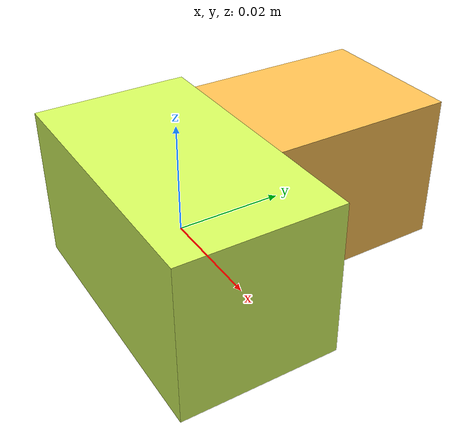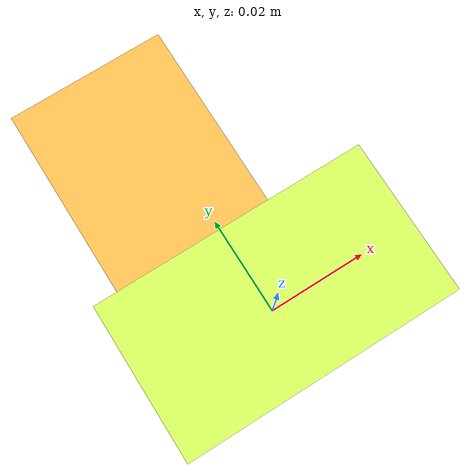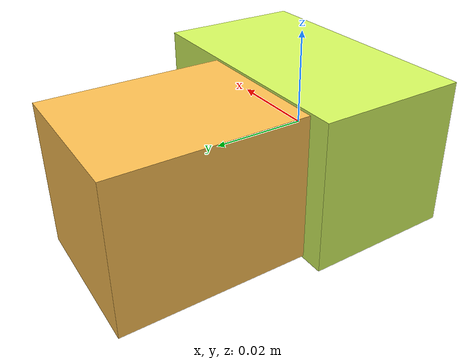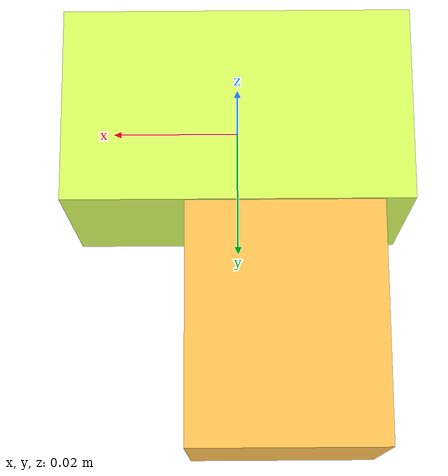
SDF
<sdf version="1.4"><world name="default"><model name="object0"><link name="link1"><pose>0 0 0 0 0 0</pose><inertial><pose>0 0 0 0 0 0</pose><mass>0.028701118871109998</mass><inertia><ixx>4.305167830666499e-06</ixx><ixy>0</ixy><iyy>8.909176255474256e-06</iyy><ixz>0</ixz><iyz>0</iyz><izz>8.909176255474256e-06</izz></inertia></inertial><visual name="link1_visual"><pose>0 0  0 0 0 0</pose><geometry><box><size>0.05315022013168518 0.03 0.03</size></box></geometry><material><diffuse>0.8392465816883481 0.98266262855328 0.3715508742274358 1</diffuse></material></visual><collision><pose>0 0  0 0 0 0</pose><geometry><box><size>0.05315022013168518 0.03 0.03</size></box></geometry></collision></link><link name="link2"><pose>-0.007033704183213341 0.02210468844924986 0 0 0 0</pose><inertial><pose>0 0 0 0 0 0</pose><mass>0.031731245339470575</mass><inertia><ixx>1.1354289909411509e-05</ixx><ixy>0</ixy><iyy>4.603674844668188e-06</iyy><ixz>0</ixz><iyz>0</iyz><izz>1.1510301865663904e-05</izz></inertia></inertial><visual name="link2_visual"><pose>0 0  0 0 0 0</pose><geometry><box><size>0.03 0.05876156544346403 0.028999999999999998</size></box></geometry><material><diffuse>0.9969985372879457 0.7534011279168837 0.32119952027721754 1</diffuse></material></visual><collision><pose>0 0  0 0 0 0</pose><geometry><box><size>0.03 0.05876156544346403 0.028999999999999998</size></box></geometry></collision></link><joint name="link_joint_0" type="fixed"><parent>link1</parent><child>link2</child><pose>0 0 0 0 0 0</pose><axis><xyz>0 0 1</xyz></axis></joint></model></world></sdf>
